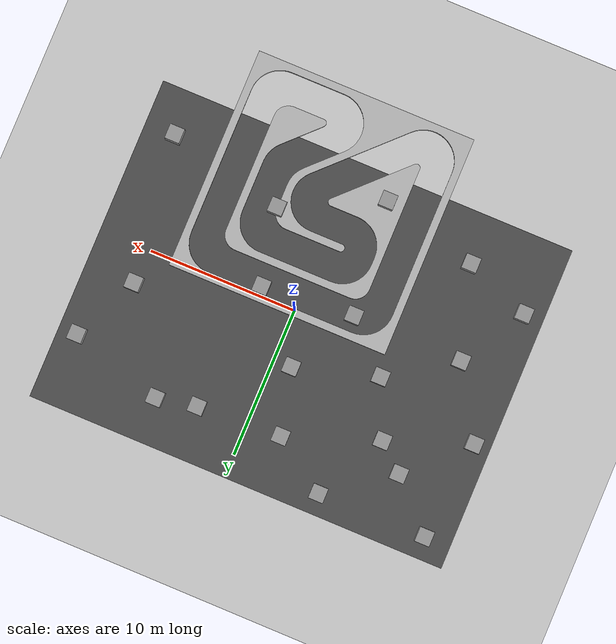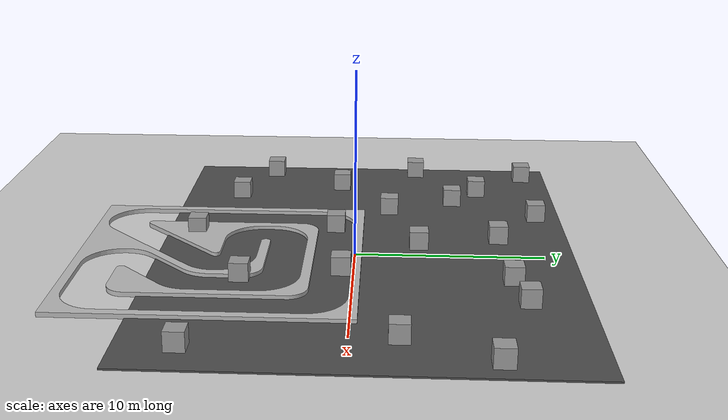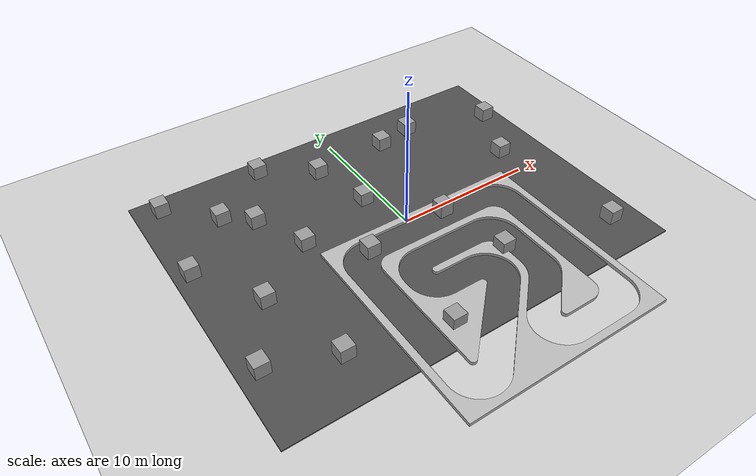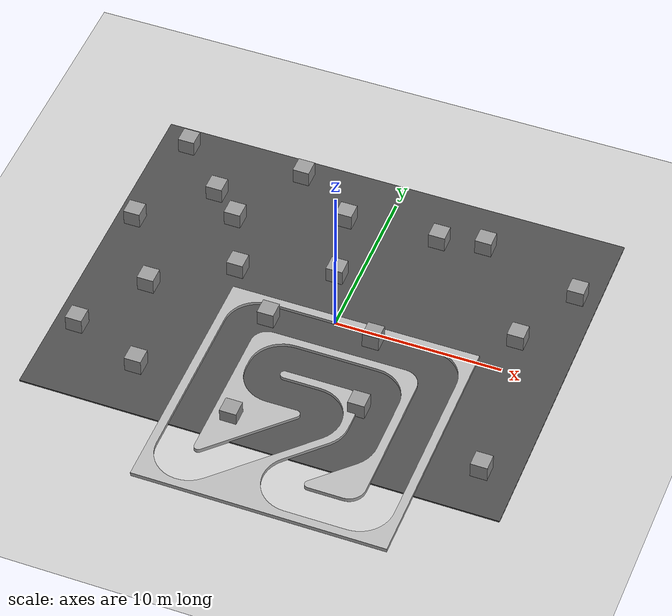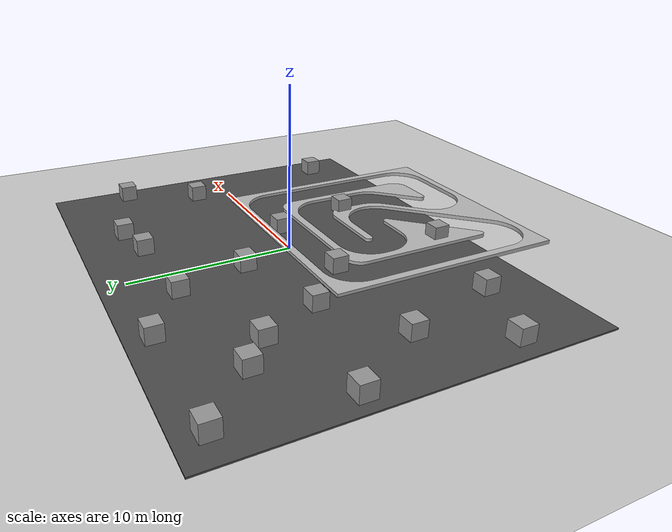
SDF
<sdf version="1.6">
 <world name="default">
  <light name="sun" type="directional">
   <pose>0 0 100 0 -0 0</pose>
   <diffuse>0.8 0.8 0.8 1</diffuse>
   <specular>0.1 0.1 0.1 1</specular>
   <attenuation>
    <range>1000</range>
    <constant>0.9</constant>
    <linear>0.01</linear>
    <quadratic>0.001</quadratic>
   </attenuation>
   <direction>-0.5 0.5 -1</direction>
  </light>
  <model name="ground_plane">
   <static>1</static>
   <link name="link">
    <collision name="collision">
     <geometry><plane><normal>0 0 1</normal><size>100 100</size></plane></geometry>
     <surface><friction><ode><mu>100</mu><mu2>50</mu2></ode></friction></surface>
    </collision>
    <visual name="visual">
     <cast_shadows>0</cast_shadows>
     <geometry><plane><normal>0 0 1</normal><size>100 100</size></plane></geometry>
     <material>
      <script><uri>file://media/materials/scripts/gazebo.material</uri><name>Gazebo/Grey</name></script>
     </material>
    </visual>
   </link>
  </model>
  <gravity>0 0 -9.8</gravity>
  <magnetic_field>6e-06 2.3e-05 -4.2e-05</magnetic_field>
  <atmosphere type="adiabatic"/>
  <physics name="default_physics" default="0" type="ode">
   <max_step_size>0.001</max_step_size>
   <real_time_factor>1</real_time_factor>
   <real_time_update_rate>1000</real_time_update_rate>
  </physics>
  <scene><ambient>0.4 0.4 0.4 1</ambient><background>0.7 0.7 0.7 1</background><shadows>1</shadows></scene>
  <spherical_coordinates>
   <surface_model>EARTH_WGS84</surface_model>
   <latitude_deg>0</latitude_deg>
   <longitude_deg>0</longitude_deg>
   <elevation>0</elevation>
   <heading_deg>0</heading_deg>
  </spherical_coordinates>
  <model name="asphalt_plane">
   <static>1</static>
   <link name="link">
    <collision name="collision"><geometry><box><size>28.54 22.04 0.1</size></box></geometry></collision>
    <visual name="visual">
     <cast_shadows>0</cast_shadows>
     <geometry><box><size>28.54 22.04 0.1</size></box></geometry>
     <material>
      <script>
       <uri>model://asphalt_plane/materials/scripts</uri>
       <uri>model://asphalt_plane/materials/textures</uri>
       <name>vrc/asphalt</name>
      </script>
     </material>
    </visual>
   </link>
   <pose>-0.719505 0.551979 0 0 -0 0</pose>
  </model>
  <model name="race_track">
   <pose>-28.0315 -24.6199 0 0 -0 0</pose>
   <static>1</static>
   <link name="body">
    <collision name="collision">
     <geometry><mesh><uri>model://race_track/race_track.stl</uri><scale>0.1 0.1 0.1</scale></mesh></geometry>
    </collision>
    <visual name="visual">
     <geometry><mesh><uri>model://race_track/race_track.stl</uri><scale>0.1 0.1 0.025</scale></mesh></geometry>
    </visual>
   </link>
  </model>
  <audio><device>default</device></audio>
  <model name="unit_box">
   <pose>-9.27266 -7.142 0.55 -0 -0 -0</pose>
   <link name="link">
    <inertial>
     <mass>1</mass>
     <inertia>
      <ixx>0.166667</ixx>
      <ixy>0</ixy>
      <ixz>0</ixz>
      <iyy>0.166667</iyy>
      <iyz>0</iyz>
      <izz>0.166667</izz>
     </inertia>
    </inertial>
    <collision name="collision"><geometry><box><size>1 1 1</size></box></geometry></collision>
    <visual name="visual">
     <geometry><box><size>1 1 1</size></box></geometry>
     <material>
      <script><name>Gazebo/Grey</name><uri>file://media/materials/scripts/gazebo.material</uri></script>
     </material>
    </visual>
   </link>
  </model>
  <model name="unit_box_clone">
   <pose>-2.81388 -8.82208 0.550002 -4e-06 -0 1.2e-05</pose>
   <link name="link">
    <inertial>
     <mass>1</mass>
     <inertia>
      <ixx>0.166667</ixx>
      <ixy>0</ixy>
      <ixz>0</ixz>
      <iyy>0.166667</iyy>
      <iyz>0</iyz>
      <izz>0.166667</izz>
     </inertia>
    </inertial>
    <collision name="collision"><geometry><box><size>1 1 1</size></box></geometry></collision>
    <visual name="visual">
     <geometry><box><size>1 1 1</size></box></geometry>
     <material>
      <script><name>Gazebo/Grey</name><uri>file://media/materials/scripts/gazebo.material</uri></script>
     </material>
    </visual>
   </link>
  </model>
  <model name="unit_box_clone_0">
   <pose>3.59666 -5.7101 0.55 0 -0 1.1e-05</pose>
   <link name="link">
    <inertial>
     <mass>1</mass>
     <inertia>
      <ixx>0.166667</ixx>
      <ixy>0</ixy>
      <ixz>0</ixz>
      <iyy>0.166667</iyy>
      <iyz>0</iyz>
      <izz>0.166667</izz>
     </inertia>
    </inertial>
    <collision name="collision"><geometry><box><size>1 1 1</size></box></geometry></collision>
    <visual name="visual">
     <geometry><box><size>1 1 1</size></box></geometry>
     <material>
      <script><name>Gazebo/Grey</name><uri>file://media/materials/scripts/gazebo.material</uri></script>
     </material>
    </visual>
   </link>
  </model>
  <model name="unit_box_clone_1">
   <pose>11.4527 -7.49622 0.550002 -4e-06 -0 1.1e-05</pose>
   <link name="link">
    <inertial>
     <mass>1</mass>
     <inertia>
      <ixx>0.166667</ixx>
      <ixy>0</ixy>
      <ixz>0</ixz>
      <iyy>0.166667</iyy>
      <iyz>0</iyz>
      <izz>0.166667</izz>
     </inertia>
    </inertial>
    <collision name="collision"><geometry><box><size>1 1 1</size></box></geometry></collision>
    <visual name="visual">
     <geometry><box><size>1 1 1</size></box></geometry>
     <material>
      <script><name>Gazebo/Grey</name><uri>file://media/materials/scripts/gazebo.material</uri></script>
     </material>
    </visual>
   </link>
  </model>
  <model name="unit_box_clone_2">
   <pose>10.1713 2.31269 0.55 0 -0 1e-05</pose>
   <link name="link">
    <inertial>
     <mass>1</mass>
     <inertia>
      <ixx>0.166667</ixx>
      <ixy>0</ixy>
      <ixz>0</ixz>
      <iyy>0.166667</iyy>
      <iyz>0</iyz>
      <izz>0.166667</izz>
     </inertia>
    </inertial>
    <collision name="collision"><geometry><box><size>1 1 1</size></box></geometry></collision>
    <visual name="visual">
     <geometry><box><size>1 1 1</size></box></geometry>
     <material>
      <script><name>Gazebo/Grey</name><uri>file://media/materials/scripts/gazebo.material</uri></script>
     </material>
    </visual>
   </link>
  </model>
  <model name="unit_box_clone_3">
   <pose>12.2587 6.74361 0.550002 -4e-06 -0 1e-05</pose>
   <link name="link">
    <inertial>
     <mass>1</mass>
     <inertia>
      <ixx>0.166667</ixx>
      <ixy>0</ixy>
      <ixz>0</ixz>
      <iyy>0.166667</iyy>
      <iyz>0</iyz>
      <izz>0.166667</izz>
     </inertia>
    </inertial>
    <collision name="collision"><geometry><box><size>1 1 1</size></box></geometry></collision>
    <visual name="visual">
     <geometry><box><size>1 1 1</size></box></geometry>
     <material>
      <script><name>Gazebo/Grey</name><uri>file://media/materials/scripts/gazebo.material</uri></script>
     </material>
    </visual>
   </link>
  </model>
  <model name="unit_box_clone_4">
   <pose>6.04497 8.55611 0.55 0 -0 9e-06</pose>
   <link name="link">
    <inertial>
     <mass>1</mass>
     <inertia>
      <ixx>0.166667</ixx>
      <ixy>0</ixy>
      <ixz>0</ixz>
      <iyy>0.166667</iyy>
      <iyz>0</iyz>
      <izz>0.166667</izz>
     </inertia>
    </inertial>
    <collision name="collision"><geometry><box><size>1 1 1</size></box></geometry></collision>
    <visual name="visual">
     <geometry><box><size>1 1 1</size></box></geometry>
     <material>
      <script><name>Gazebo/Grey</name><uri>file://media/materials/scripts/gazebo.material</uri></script>
     </material>
    </visual>
   </link>
  </model>
  <model name="unit_box_clone_5">
   <pose>2.54349 -0.635871 0.550002 -4e-06 -0 8e-06</pose>
   <link name="link">
    <inertial>
     <mass>1</mass>
     <inertia>
      <ixx>0.166667</ixx>
      <ixy>0</ixy>
      <ixz>0</ixz>
      <iyy>0.166667</iyy>
      <iyz>0</iyz>
      <izz>0.166667</izz>
     </inertia>
    </inertial>
    <collision name="collision"><geometry><box><size>1 1 1</size></box></geometry></collision>
    <visual name="visual">
     <geometry><box><size>1 1 1</size></box></geometry>
     <material>
      <script><name>Gazebo/Grey</name><uri>file://media/materials/scripts/gazebo.material</uri></script>
     </material>
    </visual>
   </link>
  </model>
  <model name="unit_box_clone_6">
   <pose>-3.63642 -1.17096 0.55 0 -0 8e-06</pose>
   <link name="link">
    <inertial>
     <mass>1</mass>
     <inertia>
      <ixx>0.166667</ixx>
      <ixy>0</ixy>
      <ixz>0</ixz>
      <iyy>0.166667</iyy>
      <iyz>0</iyz>
      <izz>0.166667</izz>
     </inertia>
    </inertial>
    <collision name="collision"><geometry><box><size>1 1 1</size></box></geometry></collision>
    <visual name="visual">
     <geometry><box><size>1 1 1</size></box></geometry>
     <material>
      <script><name>Gazebo/Grey</name><uri>file://media/materials/scripts/gazebo.material</uri></script>
     </material>
    </visual>
   </link>
  </model>
  <model name="unit_box_clone_7">
   <pose>-6.71225 1.78806 0.550002 -4e-06 0 7e-06</pose>
   <link name="link">
    <inertial>
     <mass>1</mass>
     <inertia>
      <ixx>0.166667</ixx>
      <ixy>0</ixy>
      <ixz>0</ixz>
      <iyy>0.166667</iyy>
      <iyz>0</iyz>
      <izz>0.166667</izz>
     </inertia>
    </inertial>
    <collision name="collision"><geometry><box><size>1 1 1</size></box></geometry></collision>
    <visual name="visual">
     <geometry><box><size>1 1 1</size></box></geometry>
     <material>
      <script><name>Gazebo/Grey</name><uri>file://media/materials/scripts/gazebo.material</uri></script>
     </material>
    </visual>
   </link>
  </model>
  <model name="unit_box_clone_8">
   <pose>-8.3775 5.49633 0.55 0 -0 6e-06</pose>
   <link name="link">
    <inertial>
     <mass>1</mass>
     <inertia>
      <ixx>0.166667</ixx>
      <ixy>0</ixy>
      <ixz>0</ixz>
      <iyy>0.166667</iyy>
      <iyz>0</iyz>
      <izz>0.166667</izz>
     </inertia>
    </inertial>
    <collision name="collision"><geometry><box><size>1 1 1</size></box></geometry></collision>
    <visual name="visual">
     <geometry><box><size>1 1 1</size></box></geometry>
     <material>
      <script><name>Gazebo/Grey</name><uri>file://media/materials/scripts/gazebo.material</uri></script>
     </material>
    </visual>
   </link>
  </model>
  <model name="unit_box_clone_9">
   <pose>-1.19864 3.40043 0.550002 -4e-06 -0 6e-06</pose>
   <link name="link">
    <inertial>
     <mass>1</mass>
     <inertia>
      <ixx>0.166667</ixx>
      <ixy>0</ixy>
      <ixz>0</ixz>
      <iyy>0.166667</iyy>
      <iyz>0</iyz>
      <izz>0.166667</izz>
     </inertia>
    </inertial>
    <collision name="collision"><geometry><box><size>1 1 1</size></box></geometry></collision>
    <visual name="visual">
     <geometry><box><size>1 1 1</size></box></geometry>
     <material>
      <script><name>Gazebo/Grey</name><uri>file://media/materials/scripts/gazebo.material</uri></script>
     </material>
    </visual>
   </link>
  </model>
  <model name="unit_box_clone_10">
   <pose>3.37425 8.03638 0.55 0 -0 5e-06</pose>
   <link name="link">
    <inertial>
     <mass>1</mass>
     <inertia>
      <ixx>0.166667</ixx>
      <ixy>0</ixy>
      <ixz>0</ixz>
      <iyy>0.166667</iyy>
      <iyz>0</iyz>
      <izz>0.166667</izz>
     </inertia>
    </inertial>
    <collision name="collision"><geometry><box><size>1 1 1</size></box></geometry></collision>
    <visual name="visual">
     <geometry><box><size>1 1 1</size></box></geometry>
     <material>
      <script><name>Gazebo/Grey</name><uri>file://media/materials/scripts/gazebo.material</uri></script>
     </material>
    </visual>
   </link>
  </model>
  <model name="unit_box_clone_11">
   <pose>-2.28609 7.73137 0.550002 -4e-06 -0 4e-06</pose>
   <link name="link">
    <inertial>
     <mass>1</mass>
     <inertia>
      <ixx>0.166667</ixx>
      <ixy>0</ixy>
      <ixz>0</ixz>
      <iyy>0.166667</iyy>
      <iyz>0</iyz>
      <izz>0.166667</izz>
     </inertia>
    </inertial>
    <collision name="collision"><geometry><box><size>1 1 1</size></box></geometry></collision>
    <visual name="visual">
     <geometry><box><size>1 1 1</size></box></geometry>
     <material>
      <script><name>Gazebo/Grey</name><uri>file://media/materials/scripts/gazebo.material</uri></script>
     </material>
    </visual>
   </link>
  </model>
  <model name="unit_box_clone_12">
   <pose>-5.89619 10.1646 0.55 0 -0 4e-06</pose>
   <link name="link">
    <inertial>
     <mass>1</mass>
     <inertia>
      <ixx>0.166667</ixx>
      <ixy>0</ixy>
      <ixz>0</ixz>
      <iyy>0.166667</iyy>
      <iyz>0</iyz>
      <izz>0.166667</izz>
     </inertia>
    </inertial>
    <collision name="collision"><geometry><box><size>1 1 1</size></box></geometry></collision>
    <visual name="visual">
     <geometry><box><size>1 1 1</size></box></geometry>
     <material>
      <script><name>Gazebo/Grey</name><uri>file://media/materials/scripts/gazebo.material</uri></script>
     </material>
    </visual>
   </link>
  </model>
  <model name="unit_box_clone_13">
   <pose>-10.1615 7.04332 0.550002 -4e-06 -0 3e-06</pose>
   <link name="link">
    <inertial>
     <mass>1</mass>
     <inertia>
      <ixx>0.166667</ixx>
      <ixy>0</ixy>
      <ixz>0</ixz>
      <iyy>0.166667</iyy>
      <iyz>0</iyz>
      <izz>0.166667</izz>
     </inertia>
    </inertial>
    <collision name="collision"><geometry><box><size>1 1 1</size></box></geometry></collision>
    <visual name="visual">
     <geometry><box><size>1 1 1</size></box></geometry>
     <material>
      <script><name>Gazebo/Grey</name><uri>file://media/materials/scripts/gazebo.material</uri></script>
     </material>
    </visual>
   </link>
  </model>
  <model name="unit_box_clone_14">
   <pose>-13.8632 3.44477 0.55 0 -0 3e-06</pose>
   <link name="link">
    <inertial>
     <mass>1</mass>
     <inertia>
      <ixx>0.166667</ixx>
      <ixy>0</ixy>
      <ixz>0</ixz>
      <iyy>0.166667</iyy>
      <iyz>0</iyz>
      <izz>0.166667</izz>
     </inertia>
    </inertial>
    <collision name="collision"><geometry><box><size>1 1 1</size></box></geometry></collision>
    <visual name="visual">
     <geometry><box><size>1 1 1</size></box></geometry>
     <material>
      <script><name>Gazebo/Grey</name><uri>file://media/materials/scripts/gazebo.material</uri></script>
     </material>
    </visual>
   </link>
  </model>
  <model name="unit_box_clone_15">
   <pose>-13.1878 10.0939 0.550002 -4e-06 -0 2e-06</pose>
   <link name="link">
    <inertial>
     <mass>1</mass>
     <inertia>
      <ixx>0.166667</ixx>
      <ixy>0</ixy>
      <ixz>0</ixz>
      <iyy>0.166667</iyy>
      <iyz>0</iyz>
      <izz>0.166667</izz>
     </inertia>
    </inertial>
    <collision name="collision"><geometry><box><size>1 1 1</size></box></geometry></collision>
    <visual name="visual">
     <geometry><box><size>1 1 1</size></box></geometry>
     <material>
      <script><name>Gazebo/Grey</name><uri>file://media/materials/scripts/gazebo.material</uri></script>
     </material>
    </visual>
   </link>
  </model>
  <model name="unit_box_clone_16">
   <pose>-11.057 -1.13421 0.55 0 -0 1e-06</pose>
   <link name="link">
    <inertial>
     <mass>1</mass>
     <inertia>
      <ixx>0.166667</ixx>
      <ixy>0</ixy>
      <ixz>0</ixz>
      <iyy>0.166667</iyy>
      <iyz>0</iyz>
      <izz>0.166667</izz>
     </inertia>
    </inertial>
    <collision name="collision"><geometry><box><size>1 1 1</size></box></geometry></collision>
    <visual name="visual">
     <geometry><box><size>1 1 1</size></box></geometry>
     <material>
      <script><name>Gazebo/Grey</name><uri>file://media/materials/scripts/gazebo.material</uri></script>
     </material>
    </visual>
   </link>
  </model>
  <model name="unit_box_clone_17">
   <pose>-13.6269 -5.4654 0.55 0 -0 1e-06</pose>
   <link name="link">
    <inertial>
     <mass>1</mass>
     <inertia>
      <ixx>0.166667</ixx>
      <ixy>0</ixy>
      <ixz>0</ixz>
      <iyy>0.166667</iyy>
      <iyz>0</iyz>
      <izz>0.166667</izz>
     </inertia>
    </inertial>
    <collision name="collision"><geometry><box><size>1 1 1</size></box></geometry></collision>
    <visual name="visual">
     <geometry><box><size>1 1 1</size></box></geometry>
     <material>
      <script><name>Gazebo/Grey</name><uri>file://media/materials/scripts/gazebo.material</uri></script>
     </material>
    </visual>
   </link>
  </model>
 </world>
</sdf>
